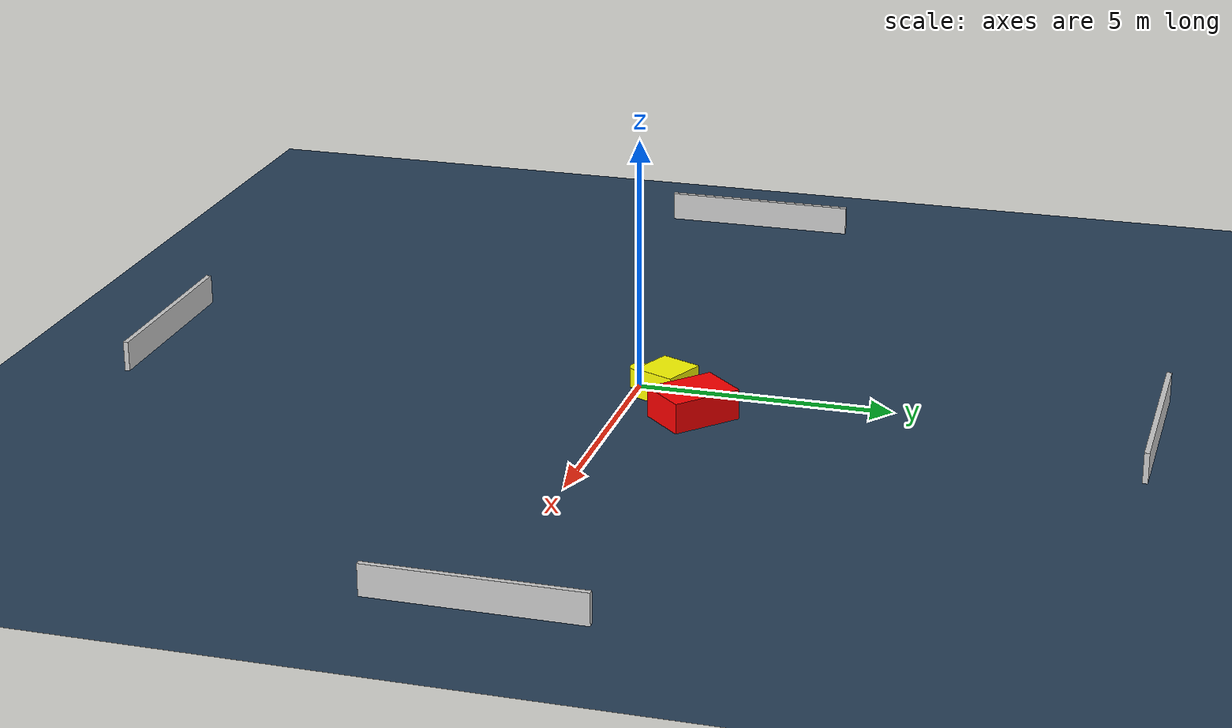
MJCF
<?xml version="1.0" ?>
<mujoco model="generated_environment">
  <option timestep="0.01" integrator="RK4" cone="elliptic"/>
  <default>
    <geom density="1"/>
  </default>
  <asset>
    <texture builtin="gradient" height="3072" name="skybox" rgb1="0.3 0.5 0.7" rgb2="0 0 0" type="skybox" width="512"/>
    <texture builtin="checker" height="300" name="groundplane" rgb1="0.2 0.3 0.4" rgb2="0.1 0.2 0.3" type="2d" width="300"/>
    <material name="groundplane" reflectance="0.2" texrepeat="5 5" texture="groundplane"/>
  </asset>
  <worldbody>
    <light dir="0 0 -1" directional="true" pos="0 0 1.5"/>
    <geom condim="3" friction="0.5 0.005 0.001" material="groundplane" name="floor" pos="0 0 0" size="0 0 0.05" type="plane"/>
    <body name="walls">
      <geom name="wall_1" condim="4" pos="-10.0 0.0 0.3" rgba="0.800000011920929 0.800000011920929 0.800000011920929 1.0" size="0.05 2.0 0.3" type="box"/>
      <geom name="wall_2" condim="4" pos="10.0 0.0 0.3" rgba="0.800000011920929 0.800000011920929 0.800000011920929 1.0" size="0.05 2.0 0.3" type="box"/>
      <geom name="wall_3" condim="4" pos="0.0 -10.0 0.3" rgba="0.800000011920929 0.800000011920929 0.800000011920929 1.0" size="2.0 0.05 0.3" type="box"/>
      <geom name="wall_4" condim="4" pos="0.0 10.0 0.3" rgba="0.800000011920929 0.800000011920929 0.800000011920929 1.0" size="2.0 0.05 0.3" type="box"/>
    </body>
    <body name="robot">
      <joint name="joint_x" type="slide" pos="0 0 0" axis="1 0 0"/>
      <joint name="joint_y" type="slide" pos="0 0 0" axis="0 1 0"/>
      <geom name="robot" type="cylinder" pos="0.0 0.0 0.2" size="0.2 0.2 0.0" mass="5.0" friction="1.0 0.005 0.0001" condim="4" rgba="1.0 1.0 0.0 1.0"/>
    </body>
    <body name="obstacle_1_movable">
      <geom name="obstacle_1_movable" condim="4" pos="0.35852556789275536 0.6478016355261143 0.3" euler="0 0 246.52337802383335" friction="0.0 0.005 0.001" rgba="1.0 1.0 0.0 1.0" size="0.4226579080607745 0.4453059689648259 0.3" type="box" mass="0.1"/>
      <joint type="free"/>
    </body>
    <body name="obstacle_2_static">
      <geom name="obstacle_2_static" condim="4" pos="1.2526849221847378 1.3940687810360275 0.3" euler="0 0 136.8502179841166" friction="0.0 0.005 0.001" rgba="1.0 0.0 0.0 1.0" size="0.7076252726385055 0.5150559569375109 0.3" type="box"/>
    </body>
  </worldbody>
  <actuator>
    <motor name="actuator_x" joint="joint_x" gear="1" ctrlrange="-1 1"/>
    <motor name="actuator_y" joint="joint_y" gear="1" ctrlrange="-1 1"/>
  </actuator>
</mujoco>
